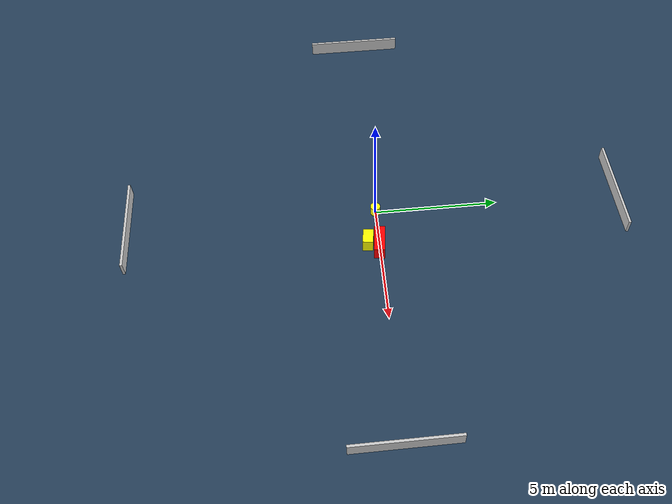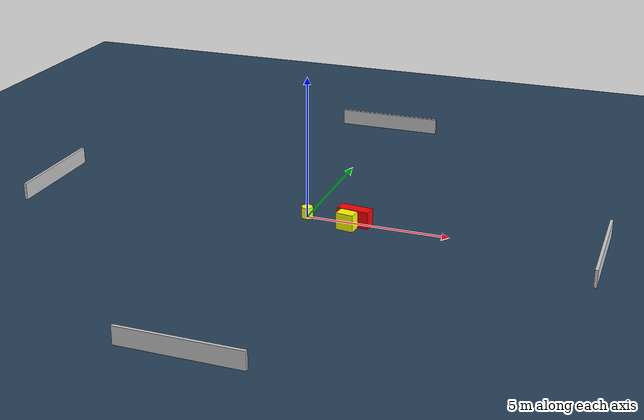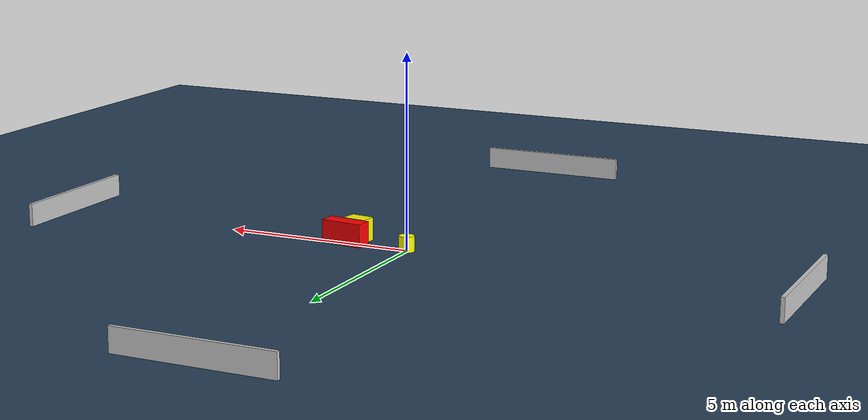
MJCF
<?xml version="1.0" ?>
<mujoco model="generated_environment">
  <option timestep="0.01" integrator="RK4" cone="elliptic"/>
  <default>
    <geom density="1"/>
  </default>
  <asset>
    <texture builtin="gradient" height="3072" name="skybox" rgb1="0.3 0.5 0.7" rgb2="0 0 0" type="skybox" width="512"/>
    <texture builtin="checker" height="300" name="groundplane" rgb1="0.2 0.3 0.4" rgb2="0.1 0.2 0.3" type="2d" width="300"/>
    <material name="groundplane" reflectance="0.2" texrepeat="5 5" texture="groundplane"/>
  </asset>
  <worldbody>
    <light dir="0 0 -1" directional="true" pos="0 0 1.5"/>
    <geom condim="3" friction="0.5 0.005 0.001" material="groundplane" name="floor" pos="0 0 0" size="0 0 0.05" type="plane"/>
    <body name="walls">
      <geom name="wall_1" condim="4" pos="-10.0 0.0 0.3" rgba="0.800000011920929 0.800000011920929 0.800000011920929 1.0" size="0.05 2.0 0.3" type="box"/>
      <geom name="wall_2" condim="4" pos="10.0 0.0 0.3" rgba="0.800000011920929 0.800000011920929 0.800000011920929 1.0" size="0.05 2.0 0.3" type="box"/>
      <geom name="wall_3" condim="4" pos="0.0 -10.0 0.3" rgba="0.800000011920929 0.800000011920929 0.800000011920929 1.0" size="2.0 0.05 0.3" type="box"/>
      <geom name="wall_4" condim="4" pos="0.0 10.0 0.3" rgba="0.800000011920929 0.800000011920929 0.800000011920929 1.0" size="2.0 0.05 0.3" type="box"/>
    </body>
    <body name="robot">
      <joint name="joint_x" type="slide" pos="0 0 0" axis="1 0 0"/>
      <joint name="joint_y" type="slide" pos="0 0 0" axis="0 1 0"/>
      <geom name="robot" type="cylinder" pos="0.0 0.0 0.2" size="0.2 0.2 0.0" mass="5.0" friction="1.0 0.005 0.0001" condim="4" rgba="1.0 1.0 0.0 1.0"/>
    </body>
    <body name="obstacle_1_movable">
      <geom name="obstacle_1_movable" condim="4" pos="1.576878398552949 -0.4473393260433431 0.3" euler="0 0 172.8102732626534" friction="0.0 0.005 0.001" rgba="1.0 1.0 0.0 1.0" size="0.3084588177096601 0.2068129111453393 0.3" type="box" mass="0.1"/>
      <joint type="free"/>
    </body>
    <body name="obstacle_2_static">
      <geom name="obstacle_2_static" condim="4" pos="1.731719504270115 -0.01237603129890534 0.3" euler="0 0 263.4441961491132" friction="0.0 0.005 0.001" rgba="1.0 0.0 0.0 1.0" size="0.21564690397752137 0.5631371616665821 0.3" type="box"/>
    </body>
  </worldbody>
  <actuator>
    <motor name="actuator_x" joint="joint_x" gear="1" ctrlrange="-1 1"/>
    <motor name="actuator_y" joint="joint_y" gear="1" ctrlrange="-1 1"/>
  </actuator>
</mujoco>
